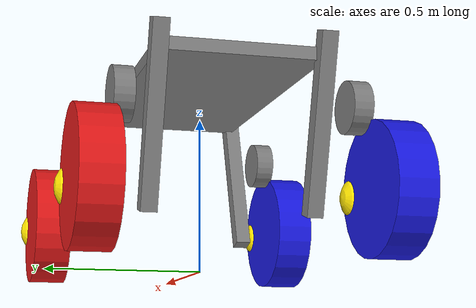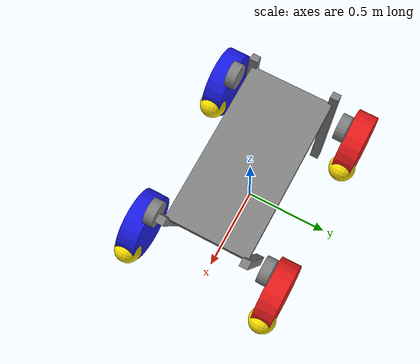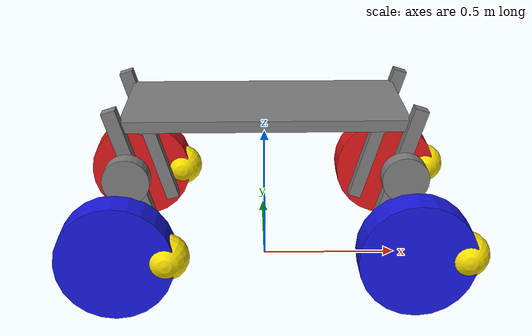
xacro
<?xml version="1.0"?>
<robot name="agribot" xmlns:xacro="http://www.ros.org/wiki/xacro">

  <!-- Include ros2_control configuration -->
  <xacro:include filename="$(find skid_steer_robot)/urdf/ros2_control.xacro"/>

  <!-- Materials -->
  <material name="grey"><color rgba="0.5 0.5 0.5 1.0"/></material>
  <material name="black"><color rgba="0.1 0.1 0.1 1.0"/></material>
  <material name="red"><color rgba="0.9 0.1 0.1 1.0"/></material>
  <material name="blue"><color rgba="0.1 0.1 0.9 1.0"/></material>
  <material name="white"><color rgba="1.0 1.0 1.0 1.0"/></material>
  <material name="yellow"><color rgba="1.0 0.9 0.0 1.0"/></material>

  <!-- Base Link: High-clearance chassis at 600mm -->
  <!-- High-clearance agricultural design: 1.0m x 0.5m frame at 0.6m height -->
  <!-- This creates significant clearance above 405mm tires, matching workshop photo -->
  <link name="base_link">
    <visual>
      <origin xyz="0 0 0.6" rpy="0 0 0"/>
      <geometry>
        <box size="1.0 0.5 0.04"/>
      </geometry>
      <material name="grey"/>
    </visual>
    <collision>
      <origin xyz="0 0 0.6" rpy="0 0 0"/>
      <geometry>
        <box size="1.0 0.5 0.04"/>
      </geometry>
    </collision>
    <inertial>
      <!-- Total mass: 75kg (base + wheels + jackshafts + chains) -->
      <mass value="75.0"/>
      <origin xyz="0 0 0.6" rpy="0 0 0"/>
      <inertia ixx="2.5" ixy="0" ixz="0" iyy="3.5" iyz="0" izz="3.5"/>
    </inertial>
  </link>

  <!-- V-Leg Macro: Creates leg and wheel assembly -->
  <!-- High-clearance: Longer, more vertical legs to reach 0.6m chassis height -->
  <!-- Corrected dimensions: 81cm (0.81m) wheelbase, 87cm (0.87m) track -->
  <xacro:macro name="v_leg" params="prefix x_reflect y_reflect side_color gazebo_color">
    <!-- Leg Link: Longer legs (0.55m) with more vertical angle for high clearance -->
    <link name="${prefix}_leg">
      <visual>
        <origin xyz="0 0 -0.2" rpy="0 ${x_reflect * 0.3} 0"/>
        <geometry><box size="0.05 0.05 0.55"/></geometry>
        <material name="grey"/>
      </visual>
      <collision>
        <origin xyz="0 0 -0.2" rpy="0 ${x_reflect * 0.3} 0"/>
        <geometry><box size="0.05 0.05 0.55"/></geometry>
      </collision>
      <inertial>
        <mass value="3.5"/>
        <origin xyz="0 0 -0.2"/>
        <inertia ixx="0.025" ixy="0" ixz="0" iyy="0.025" iyz="0" izz="0.025"/>
      </inertial>
    </link>

    <!-- Fixed joint connecting leg to base at chassis corners -->
    <joint name="${prefix}_leg_joint" type="fixed">
      <parent link="base_link"/>
      <child link="${prefix}_leg"/>
      <origin xyz="${x_reflect*0.45} ${y_reflect*0.25} 0.6" rpy="0 0 0"/>
    </joint>

    <!-- Wheel Link: 4.00-8 tire (405mm diameter, 0.2025m radius) -->
    <!-- Gazebo color set via gazebo tag below (URDF material tags are ignored by Gazebo) -->
    <link name="${prefix}_wheel">
      <visual>
        <geometry><cylinder radius="0.2025" length="0.12"/></geometry>
        <material name="${side_color}"/>
      </visual>
      <collision>
        <geometry><cylinder radius="0.2025" length="0.12"/></geometry>
      </collision>
      <inertial>
        <mass value="8.0"/>
        <inertia ixx="0.1" ixy="0" ixz="0" iyy="0.1" iyz="0" izz="0.15"/>
      </inertial>
    </link>

    <!-- Dot Link: large yellow sphere on the rim, separate link so Gazebo can colour it -->
    <!-- Fixed to wheel so it rotates with the wheel. At 0.17m offset it sweeps visibly. -->
    <link name="${prefix}_wheel_dot">
      <visual>
        <geometry><sphere radius="0.08"/></geometry>
        <material name="yellow"/>
      </visual>
      <inertial>
        <mass value="0.01"/>
        <inertia ixx="0.00001" ixy="0" ixz="0" iyy="0.00001" iyz="0" izz="0.00001"/>
      </inertial>
    </link>

    <!-- Fixed joint: dot sits at wheel rim, rotates with wheel -->
    <joint name="${prefix}_wheel_dot_joint" type="fixed">
      <parent link="${prefix}_wheel"/>
      <child link="${prefix}_wheel_dot"/>
      <origin xyz="0.17 0 0" rpy="0 0 0"/>
    </joint>

    <!-- Jackshaft Link: 36T sprocket on middle jackshaft (two-stage chain drive) -->
    <!-- 16T (Gearbox) → 36T (Jackshaft) → 16T (Wheel) = 2.25:1 chain reduction -->
    <!-- Jackshaft positioned in middle of leg to preserve 0.6m ground clearance -->
    <link name="${prefix}_jackshaft">
      <visual>
        <origin xyz="0 0 0" rpy="0 0 0"/>
        <geometry>
          <cylinder radius="0.08" length="0.06"/>  <!-- 36T sprocket ~16cm diameter -->
        </geometry>
        <material name="grey"/>
      </visual>
      <collision>
        <geometry>
          <cylinder radius="0.08" length="0.06"/>
        </geometry>
      </collision>
      <inertial>
        <!-- Rotating mass of jackshaft + 36T sprocket acts as flywheel -->
        <!-- Adds rotational inertia - robot won't stop instantly when motor stops -->
        <mass value="2.5"/>  <!-- Jackshaft + large sprocket weight -->
        <inertia ixx="0.02" ixy="0" ixz="0" iyy="0.02" iyz="0" izz="0.02"/>
      </inertial>
    </link>

    <!-- Jackshaft joint: Rotating element in middle of leg (simulates 16T→36T chain stage) -->
    <joint name="${prefix}_jackshaft_joint" type="continuous">
      <parent link="${prefix}_leg"/>
      <child link="${prefix}_jackshaft"/>
      <!-- Positioned in middle of leg to keep 36T sprocket protected and high (preserves clearance) -->
      <origin xyz="${x_reflect*0.02} ${y_reflect*0.1} -0.15" rpy="${pi/2} 0 0"/>
      <axis xyz="0 0 1"/>
      <limit effort="300" velocity="10.0"/>
      <dynamics damping="0.05" friction="0.0"/>
    </joint>

    <!-- Continuous joint for wheel rotation -->
    <!-- Wheel offset: 0.25m leg attachment + 0.185m wheel offset = 0.435m (half of 0.87m track) -->
    <!-- Z offset: -0.3975m to place wheel at ground level (0.6m chassis - 0.2025m radius - 0.3975m = 0.0m) -->
    <!-- Total reduction: 22.5:1 (10:1 gearbox + 2.25:1 chain: 16T→36T=2.25:1, 16T→16T=1:1) -->
    <!-- Note: Wheel is directly attached to leg for proper ground contact, but driven via chain from jackshaft -->
    <joint name="${prefix}_wheel_joint" type="continuous">
      <parent link="${prefix}_leg"/>  <!-- Wheel attached to leg for ground contact -->
      <child link="${prefix}_wheel"/>
      <origin xyz="${x_reflect*0.06} ${y_reflect*0.185} -0.3975" rpy="${-pi/2} 0 0"/>
      <axis xyz="0 0 1"/>
      <!-- Max effort accounts for 22.5:1 reduction: 300Nm * 22.5 = 6750Nm at wheel -->
      <!-- But we cap at 300Nm to match gearbox rating -->
      <limit effort="6750" velocity="10.0"/>
      <dynamics damping="0.0" friction="0.0"/>
    </joint>

    <!-- Gazebo friction + colour for wheel -->
    <gazebo reference="${prefix}_wheel">
      <material>Gazebo/${gazebo_color}</material>
      <mu1>1.1</mu1>
      <mu2>0.5</mu2>
      <kp>1000000.0</kp>
      <kd>10.0</kd>
      <minDepth>0.001</minDepth>
      <maxVel>1.0</maxVel>
    </gazebo>

    <!-- Gazebo colour for dot: bright yellow, no collision needed -->
    <gazebo reference="${prefix}_wheel_dot">
      <material>Gazebo/Yellow</material>
    </gazebo>

    <!-- Gearbox joint damping (simulates 10:1 gearbox backlash and friction) -->
    <gazebo reference="${prefix}_wheel_joint">
      <implicitSpringDamper>false</implicitSpringDamper>
      <fudgeFactor>1.0</fudgeFactor>
    </gazebo>
  </xacro:macro>

  <!-- Instantiate 4 V-legs: left=red, right=blue, all get yellow dot -->
  <xacro:v_leg prefix="front_left"  x_reflect="1"  y_reflect="1"  side_color="red"  gazebo_color="Red" />
  <xacro:v_leg prefix="front_right" x_reflect="1"  y_reflect="-1" side_color="blue" gazebo_color="Blue" />
  <xacro:v_leg prefix="rear_left"   x_reflect="-1" y_reflect="1"  side_color="red"  gazebo_color="Red" />
  <xacro:v_leg prefix="rear_right"  x_reflect="-1" y_reflect="-1" side_color="blue" gazebo_color="Blue" />

  <!-- IMU plugin for orientation monitoring (needed for safety tests) -->
  <gazebo reference="base_link">
    <sensor name="imu_sensor" type="imu">
      <always_on>true</always_on>
      <update_rate>100</update_rate>
      <plugin filename="libgazebo_ros_imu_sensor.so" name="imu_plugin">
        <ros>
          <namespace>/</namespace>
          <remapping>~/out:=imu/data</remapping>
        </ros>
        <imu>
          <angular_velocity>
            <x>
              <noise>
                <type>gaussian</type>
                <mean>0.0</mean>
                <stddev>0.0002</stddev>
              </noise>
            </x>
            <y>
              <noise>
                <type>gaussian</type>
                <mean>0.0</mean>
                <stddev>0.0002</stddev>
              </noise>
            </y>
            <z>
              <noise>
                <type>gaussian</type>
                <mean>0.0</mean>
                <stddev>0.0002</stddev>
              </noise>
            </z>
          </angular_velocity>
          <linear_acceleration>
            <x>
              <noise>
                <type>gaussian</type>
                <mean>0.0</mean>
                <stddev>0.01</stddev>
              </noise>
            </x>
            <y>
              <noise>
                <type>gaussian</type>
                <mean>0.0</mean>
                <stddev>0.01</stddev>
              </noise>
            </y>
            <z>
              <noise>
                <type>gaussian</type>
                <mean>0.0</mean>
                <stddev>0.01</stddev>
              </noise>
            </z>
          </linear_acceleration>
        </imu>
      </plugin>
    </sensor>
  </gazebo>

</robot>
